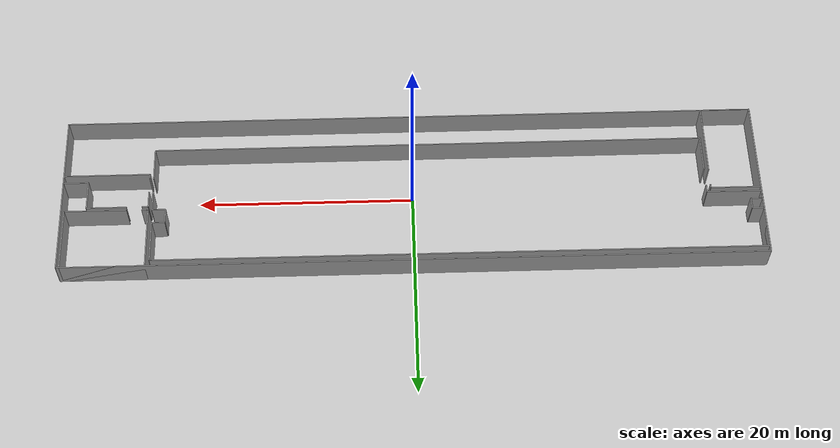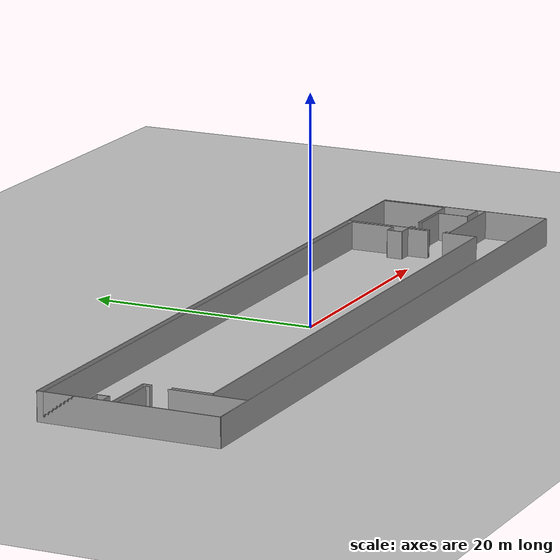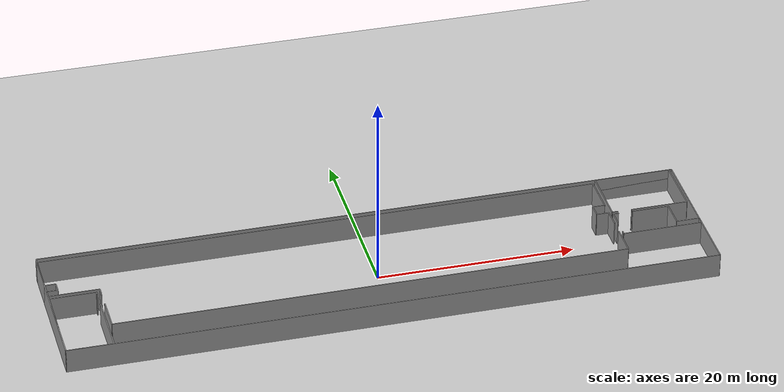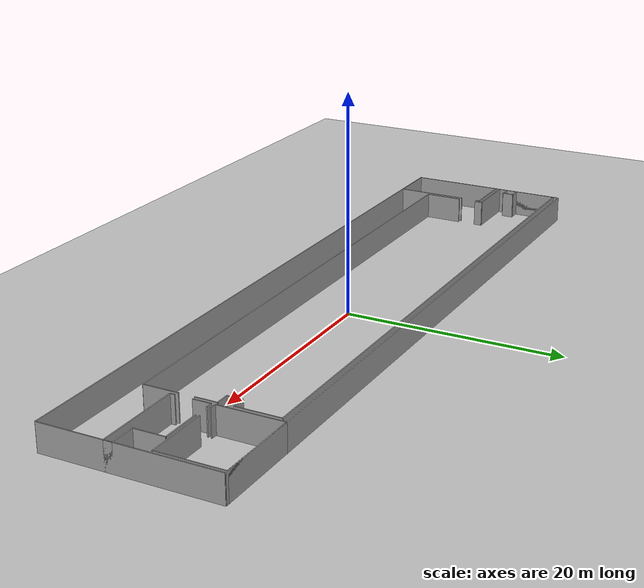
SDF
<sdf version="1.6">
  <world name="default">
    <light name="sun" type="directional">
      <cast_shadows>1</cast_shadows>
      <pose frame="">0 0 10 0 -0 0</pose>
      <diffuse>0.8 0.8 0.8 1</diffuse>
      <specular>0.1 0.1 0.1 1</specular>
      <attenuation>
        <range>1000</range>
        <constant>0.9</constant>
        <linear>0.01</linear>
        <quadratic>0.001</quadratic>
      </attenuation>
      <direction>-0.5 0.5 -1</direction>
    </light>
    <model name="ground_plane">
      <static>1</static>
      <link name="link">
        <collision name="collision">
          <geometry>
            <plane>
              <normal>0 0 1</normal>
              <size>100 100</size>
            </plane>
          </geometry>
          <surface>
            <friction>
              <ode>
                <mu>100</mu>
                <mu2>50</mu2>
              </ode>
              <torsional>
                <ode />
              </torsional>
            </friction>
            <contact>
              <ode />
            </contact>
            <bounce />
          </surface>
          <max_contacts>10</max_contacts>
        </collision>
        <visual name="visual">
          <cast_shadows>0</cast_shadows>
          <geometry>
            <plane>
              <normal>0 0 1</normal>
              <size>100 100</size>
            </plane>
          </geometry>
          <material>
            <script>
              <uri>file://media/materials/scripts/gazebo.material</uri>
              <name>Gazebo/Grey</name>
            </script>
          </material>
        </visual>
        <self_collide>0</self_collide>
        <kinematic>0</kinematic>
        <gravity>1</gravity>
      </link>
    </model>
    <gravity>0 0 -9.8</gravity>
    <magnetic_field>6e-06 2.3e-05 -4.2e-05</magnetic_field>
    <atmosphere type="adiabatic" />
    <physics default="0" name="default_physics" type="ode">
      <max_step_size>0.001</max_step_size>
      <real_time_factor>1</real_time_factor>
      <real_time_update_rate>1000</real_time_update_rate>
    </physics>
    <scene>
      <ambient>0.4 0.4 0.4 1</ambient>
      <background>0.7 0.7 0.7 1</background>
      <shadows>1</shadows>
    </scene>
    <spherical_coordinates>
      <surface_model>EARTH_WGS84</surface_model>
      <latitude_deg>0</latitude_deg>
      <longitude_deg>0</longitude_deg>
      <elevation>0</elevation>
      <heading_deg>0</heading_deg>
    </spherical_coordinates>
  <model name="0510030969_A-40">
		<static>1</static>
		<link name="Wall_0">
			<collision name="Wall_0_Collision">
				<geometry>
					<box>
						<size>8.78923368095 0.1 2.5</size>
					</box>
				</geometry>
				<pose frame="">4.39461684047 0 1.25 0 0 0</pose>
			</collision>
			<visual name="Wall_0_Visual">
				<pose frame="">4.39461684047 0 1.25 0 0 0</pose>
				<geometry>
					<box>
						<size>8.78923368095 0.1 2.5</size>
					</box>
				</geometry>
				<material>
					<script>
						<uri>file://media/materials/scripts/gazebo.material</uri>
						<name>Gazebo/Grey</name>
					</script>
					<ambient>1 1 1 1</ambient>
				</material>
			</visual>
			<pose frame="">0.0101616980197 -15.7569829919 0 0 0 1.57079632679</pose>
		</link>
		<link name="Wall_1">
			<collision name="Wall_1_Collision">
				<geometry>
					<box>
						<size>4.66587066699 0.1 2.5</size>
					</box>
				</geometry>
				<pose frame="">2.33293533349 0 1.25 0 0 0</pose>
			</collision>
			<visual name="Wall_1_Visual">
				<pose frame="">2.33293533349 0 1.25 0 0 0</pose>
				<geometry>
					<box>
						<size>4.66587066699 0.1 2.5</size>
					</box>
				</geometry>
				<material>
					<script>
						<uri>file://media/materials/scripts/gazebo.material</uri>
						<name>Gazebo/Grey</name>
					</script>
					<ambient>1 1 1 1</ambient>
				</material>
			</visual>
			<pose frame="">0.0101616980197 -6.96774931091 0 0 0 0.0</pose>
		</link>
		<link name="Wall_2">
			<collision name="Wall_2_Collision">
				<geometry>
					<box>
						<size>0.374331550802 0.1 2.5</size>
					</box>
				</geometry>
				<pose frame="">0.187165775401 0 1.25 0 0 0</pose>
			</collision>
			<visual name="Wall_2_Visual">
				<pose frame="">0.187165775401 0 1.25 0 0 0</pose>
				<geometry>
					<box>
						<size>0.374331550802 0.1 2.5</size>
					</box>
				</geometry>
				<material>
					<script>
						<uri>file://media/materials/scripts/gazebo.material</uri>
						<name>Gazebo/Grey</name>
					</script>
					<ambient>1 1 1 1</ambient>
				</material>
			</visual>
			<pose frame="">4.67603236501 -6.96774931091 0 0 0 -1.57079632679</pose>
		</link>
		<link name="Wall_3">
			<collision name="Wall_3_Collision">
				<geometry>
					<box>
						<size>6.83031234519 0.1 2.5</size>
					</box>
				</geometry>
				<pose frame="">3.4151561726 0 1.25 0 0 0</pose>
			</collision>
			<visual name="Wall_3_Visual">
				<pose frame="">3.4151561726 0 1.25 0 0 0</pose>
				<geometry>
					<box>
						<size>6.83031234519 0.1 2.5</size>
					</box>
				</geometry>
				<material>
					<script>
						<uri>file://media/materials/scripts/gazebo.material</uri>
						<name>Gazebo/Grey</name>
					</script>
					<ambient>1 1 1 1</ambient>
				</material>
			</visual>
			<pose frame="">4.67603236501 -8.92540043441 0 0 0 -1.57079632679</pose>
		</link>
		<link name="Wall_4">
			<collision name="Wall_4_Collision">
				<geometry>
					<box>
						<size>4.66587083989 0.1 2.5</size>
					</box>
				</geometry>
				<pose frame="">2.33293541994 0 1.25 0 0 0</pose>
			</collision>
			<visual name="Wall_4_Visual">
				<pose frame="">2.33293541994 0 1.25 0 0 0</pose>
				<geometry>
					<box>
						<size>4.66587083989 0.1 2.5</size>
					</box>
				</geometry>
				<material>
					<script>
						<uri>file://media/materials/scripts/gazebo.material</uri>
						<name>Gazebo/Grey</name>
					</script>
					<ambient>1 1 1 1</ambient>
				</material>
			</visual>
			<pose frame="">4.67603236501 -15.7557127796 0 0 0 -3.14132041882</pose>
		</link>
		<link name="Wall_5">
			<collision name="Wall_5_Collision">
				<geometry>
					<box>
						<size>3.53119006186 0.1 2.5</size>
					</box>
				</geometry>
				<pose frame="">1.76559503093 0 1.25 0 0 0</pose>
			</collision>
			<visual name="Wall_5_Visual">
				<pose frame="">1.76559503093 0 1.25 0 0 0</pose>
				<geometry>
					<box>
						<size>3.53119006186 0.1 2.5</size>
					</box>
				</geometry>
				<material>
					<script>
						<uri>file://media/materials/scripts/gazebo.material</uri>
						<name>Gazebo/Grey</name>
					</script>
					<ambient>1 1 1 1</ambient>
				</material>
			</visual>
			<pose frame="">5.09075666544 -12.5725608749 0 0 0 1.57079632679</pose>
		</link>
		<link name="Wall_6">
			<collision name="Wall_6_Collision">
				<geometry>
					<box>
						<size>0.76212735148 0.1 2.5</size>
					</box>
				</geometry>
				<pose frame="">0.38106367574 0 1.25 0 0 0</pose>
			</collision>
			<visual name="Wall_6_Visual">
				<pose frame="">0.38106367574 0 1.25 0 0 0</pose>
				<geometry>
					<box>
						<size>0.76212735148 0.1 2.5</size>
					</box>
				</geometry>
				<material>
					<script>
						<uri>file://media/materials/scripts/gazebo.material</uri>
						<name>Gazebo/Grey</name>
					</script>
					<ambient>1 1 1 1</ambient>
				</material>
			</visual>
			<pose frame="">5.09075666544 -7.29063726549 0 0 0 1.57079632679</pose>
		</link>
		<link name="Wall_7">
			<collision name="Wall_7_Collision">
				<geometry>
					<box>
						<size>5.07970581884 0.1 2.5</size>
					</box>
				</geometry>
				<pose frame="">2.53985290942 0 1.25 0 0 0</pose>
			</collision>
			<visual name="Wall_7_Visual">
				<pose frame="">2.53985290942 0 1.25 0 0 0</pose>
				<geometry>
					<box>
						<size>5.07970581884 0.1 2.5</size>
					</box>
				</geometry>
				<material>
					<script>
						<uri>file://media/materials/scripts/gazebo.material</uri>
						<name>Gazebo/Grey</name>
					</script>
					<ambient>1 1 1 1</ambient>
				</material>
			</visual>
			<pose frame="">5.09075666544 -6.52850991401 0 0 0 3.14159265359</pose>
		</link>
		<link name="Wall_8">
			<collision name="Wall_8_Collision">
				<geometry>
					<box>
						<size>0.828305409834 0.1 2.5</size>
					</box>
				</geometry>
				<pose frame="">0.414152704917 0 1.25 0 0 0</pose>
			</collision>
			<visual name="Wall_8_Visual">
				<pose frame="">0.414152704917 0 1.25 0 0 0</pose>
				<geometry>
					<box>
						<size>0.828305409834 0.1 2.5</size>
					</box>
				</geometry>
				<material>
					<script>
						<uri>file://media/materials/scripts/gazebo.material</uri>
						<name>Gazebo/Grey</name>
					</script>
					<ambient>1 1 1 1</ambient>
				</material>
			</visual>
			<pose frame="">0.0110508465965 -6.52850991401 0 0 0 1.57079632679</pose>
		</link>
		<link name="Wall_9">
			<collision name="Wall_9_Collision">
				<geometry>
					<box>
						<size>1.10444955352 0.1 2.5</size>
					</box>
				</geometry>
				<pose frame="">0.55222477676 0 1.25 0 0 0</pose>
			</collision>
			<visual name="Wall_9_Visual">
				<pose frame="">0.55222477676 0 1.25 0 0 0</pose>
				<geometry>
					<box>
						<size>1.10444955352 0.1 2.5</size>
					</box>
				</geometry>
				<material>
					<script>
						<uri>file://media/materials/scripts/gazebo.material</uri>
						<name>Gazebo/Grey</name>
					</script>
					<ambient>1 1 1 1</ambient>
				</material>
			</visual>
			<pose frame="">0.0110508465965 -5.70020450417 0 0 0 0.0</pose>
		</link>
		<link name="Wall_10">
			<collision name="Wall_10_Collision">
				<geometry>
					<box>
						<size>1.07142403496 0.1 2.5</size>
					</box>
				</geometry>
				<pose frame="">0.535712017478 0 1.25 0 0 0</pose>
			</collision>
			<visual name="Wall_10_Visual">
				<pose frame="">0.535712017478 0 1.25 0 0 0</pose>
				<geometry>
					<box>
						<size>1.07142403496 0.1 2.5</size>
					</box>
				</geometry>
				<material>
					<script>
						<uri>file://media/materials/scripts/gazebo.material</uri>
						<name>Gazebo/Grey</name>
					</script>
					<ambient>1 1 1 1</ambient>
				</material>
			</visual>
			<pose frame="">1.11550040012 -5.70020450417 0 0 0 1.57079632679</pose>
		</link>
		<link name="Wall_11">
			<collision name="Wall_11_Collision">
				<geometry>
					<box>
						<size>1.11550040012 0.1 2.5</size>
					</box>
				</geometry>
				<pose frame="">0.557750200058 0 1.25 0 0 0</pose>
			</collision>
			<visual name="Wall_11_Visual">
				<pose frame="">0.557750200058 0 1.25 0 0 0</pose>
				<geometry>
					<box>
						<size>1.11550040012 0.1 2.5</size>
					</box>
				</geometry>
				<material>
					<script>
						<uri>file://media/materials/scripts/gazebo.material</uri>
						<name>Gazebo/Grey</name>
					</script>
					<ambient>1 1 1 1</ambient>
				</material>
			</visual>
			<pose frame="">1.11550040012 -4.62878046922 0 0 0 3.14159265359</pose>
		</link>
		<link name="Wall_12">
			<collision name="Wall_12_Collision">
				<geometry>
					<box>
						<size>4.07573005449 0.1 2.5</size>
					</box>
				</geometry>
				<pose frame="">2.03786502725 0 1.25 0 0 0</pose>
			</collision>
			<visual name="Wall_12_Visual">
				<pose frame="">2.03786502725 0 1.25 0 0 0</pose>
				<geometry>
					<box>
						<size>4.07573005449 0.1 2.5</size>
					</box>
				</geometry>
				<material>
					<script>
						<uri>file://media/materials/scripts/gazebo.material</uri>
						<name>Gazebo/Grey</name>
					</script>
					<ambient>1 1 1 1</ambient>
				</material>
			</visual>
			<pose frame="">0.0 -4.62878046922 0 0 0 1.57079632679</pose>
		</link>
		<link name="Wall_13">
			<collision name="Wall_13_Collision">
				<geometry>
					<box>
						<size>56.7176445184 0.1 2.5</size>
					</box>
				</geometry>
				<pose frame="">28.3588222592 0 1.25 0 0 0</pose>
			</collision>
			<visual name="Wall_13_Visual">
				<pose frame="">28.3588222592 0 1.25 0 0 0</pose>
				<geometry>
					<box>
						<size>56.7176445184 0.1 2.5</size>
					</box>
				</geometry>
				<material>
					<script>
						<uri>file://media/materials/scripts/gazebo.material</uri>
						<name>Gazebo/Grey</name>
					</script>
					<ambient>1 1 1 1</ambient>
				</material>
			</visual>
			<pose frame="">0.0 -0.553050414724 0 0 0 0.0</pose>
		</link>
		<link name="Wall_14">
			<collision name="Wall_14_Collision">
				<geometry>
					<box>
						<size>4.02047582151 0.1 2.5</size>
					</box>
				</geometry>
				<pose frame="">2.01023791075 0 1.25 0 0 0</pose>
			</collision>
			<visual name="Wall_14_Visual">
				<pose frame="">2.01023791075 0 1.25 0 0 0</pose>
				<geometry>
					<box>
						<size>4.02047582151 0.1 2.5</size>
					</box>
				</geometry>
				<material>
					<script>
						<uri>file://media/materials/scripts/gazebo.material</uri>
						<name>Gazebo/Grey</name>
					</script>
					<ambient>1 1 1 1</ambient>
				</material>
			</visual>
			<pose frame="">56.7176445184 -0.553050414724 0 0 0 -1.57079632679</pose>
		</link>
		<link name="Wall_15">
			<collision name="Wall_15_Collision">
				<geometry>
					<box>
						<size>1.22600886608 0.1 2.5</size>
					</box>
				</geometry>
				<pose frame="">0.613004433041 0 1.25 0 0 0</pose>
			</collision>
			<visual name="Wall_15_Visual">
				<pose frame="">0.613004433041 0 1.25 0 0 0</pose>
				<geometry>
					<box>
						<size>1.22600886608 0.1 2.5</size>
					</box>
				</geometry>
				<material>
					<script>
						<uri>file://media/materials/scripts/gazebo.material</uri>
						<name>Gazebo/Grey</name>
					</script>
					<ambient>1 1 1 1</ambient>
				</material>
			</visual>
			<pose frame="">56.7176445184 -4.57352623623 0 0 0 3.14159265359</pose>
		</link>
		<link name="Wall_16">
			<collision name="Wall_16_Collision">
				<geometry>
					<box>
						<size>1.39177156503 0.1 2.5</size>
					</box>
				</geometry>
				<pose frame="">0.695885782514 0 1.25 0 0 0</pose>
			</collision>
			<visual name="Wall_16_Visual">
				<pose frame="">0.695885782514 0 1.25 0 0 0</pose>
				<geometry>
					<box>
						<size>1.39177156503 0.1 2.5</size>
					</box>
				</geometry>
				<material>
					<script>
						<uri>file://media/materials/scripts/gazebo.material</uri>
						<name>Gazebo/Grey</name>
					</script>
					<ambient>1 1 1 1</ambient>
				</material>
			</visual>
			<pose frame="">55.4916356523 -4.57352623623 0 0 0 -1.57079632679</pose>
		</link>
		<link name="Wall_17">
			<collision name="Wall_17_Collision">
				<geometry>
					<box>
						<size>1.25712906627 0.1 2.5</size>
					</box>
				</geometry>
				<pose frame="">0.628564533133 0 1.25 0 0 0</pose>
			</collision>
			<visual name="Wall_17_Visual">
				<pose frame="">0.628564533133 0 1.25 0 0 0</pose>
				<geometry>
					<box>
						<size>1.25712906627 0.1 2.5</size>
					</box>
				</geometry>
				<material>
					<script>
						<uri>file://media/materials/scripts/gazebo.material</uri>
						<name>Gazebo/Grey</name>
					</script>
					<ambient>1 1 1 1</ambient>
				</material>
			</visual>
			<pose frame="">55.4916356523 -5.96529780126 0 0 0 0.0</pose>
		</link>
		<link name="Wall_18">
			<collision name="Wall_18_Collision">
				<geometry>
					<box>
						<size>1.97505303136 0.1 2.5</size>
					</box>
				</geometry>
				<pose frame="">0.987526515681 0 1.25 0 0 0</pose>
			</collision>
			<visual name="Wall_18_Visual">
				<pose frame="">0.987526515681 0 1.25 0 0 0</pose>
				<geometry>
					<box>
						<size>1.97505303136 0.1 2.5</size>
					</box>
				</geometry>
				<material>
					<script>
						<uri>file://media/materials/scripts/gazebo.material</uri>
						<name>Gazebo/Grey</name>
					</script>
					<ambient>1 1 1 1</ambient>
				</material>
			</visual>
			<pose frame="">56.7487647186 -5.96529780126 0 0 0 -1.57079632679</pose>
		</link>
		<link name="Wall_19">
			<collision name="Wall_19_Collision">
				<geometry>
					<box>
						<size>3.19217041168 0.1 2.5</size>
					</box>
				</geometry>
				<pose frame="">1.59608520584 0 1.25 0 0 0</pose>
			</collision>
			<visual name="Wall_19_Visual">
				<pose frame="">1.59608520584 0 1.25 0 0 0</pose>
				<geometry>
					<box>
						<size>3.19217041168 0.1 2.5</size>
					</box>
				</geometry>
				<material>
					<script>
						<uri>file://media/materials/scripts/gazebo.material</uri>
						<name>Gazebo/Grey</name>
					</script>
					<ambient>1 1 1 1</ambient>
				</material>
			</visual>
			<pose frame="">56.7487647186 -9.33402771603 0 0 0 -1.57079632679</pose>
		</link>
		<link name="Wall_20">
			<collision name="Wall_20_Collision">
				<geometry>
					<box>
						<size>51.6580288583 0.1 2.5</size>
					</box>
				</geometry>
				<pose frame="">25.8290144291 0 1.25 0 0 0</pose>
			</collision>
			<visual name="Wall_20_Visual">
				<pose frame="">25.8290144291 0 1.25 0 0 0</pose>
				<geometry>
					<box>
						<size>51.6580288583 0.1 2.5</size>
					</box>
				</geometry>
				<material>
					<script>
						<uri>file://media/materials/scripts/gazebo.material</uri>
						<name>Gazebo/Grey</name>
					</script>
					<ambient>1 1 1 1</ambient>
				</material>
			</visual>
			<pose frame="">56.7487647186 -12.5261981277 0 0 0 -3.14069515993</pose>
		</link>
		<link name="Wall_21">
			<collision name="Wall_21_Collision">
				<geometry>
					<box>
						<size>5.92681037001 0.1 2.5</size>
					</box>
				</geometry>
				<pose frame="">2.96340518501 0 1.25 0 0 0</pose>
			</collision>
			<visual name="Wall_21_Visual">
				<pose frame="">2.96340518501 0 1.25 0 0 0</pose>
				<geometry>
					<box>
						<size>5.92681037001 0.1 2.5</size>
					</box>
				</geometry>
				<material>
					<script>
						<uri>file://media/materials/scripts/gazebo.material</uri>
						<name>Gazebo/Grey</name>
					</script>
					<ambient>1 1 1 1</ambient>
				</material>
			</visual>
			<pose frame="">57.1035350007 -5.92681037001 0 0 0 1.57079632679</pose>
		</link>
		<link name="Wall_22">
			<collision name="Wall_22_Collision">
				<geometry>
					<box>
						<size>7.77357196388 0.1 2.5</size>
					</box>
				</geometry>
				<pose frame="">3.88678598194 0 1.25 0 0 0</pose>
			</collision>
			<visual name="Wall_22_Visual">
				<pose frame="">3.88678598194 0 1.25 0 0 0</pose>
				<geometry>
					<box>
						<size>7.77357196388 0.1 2.5</size>
					</box>
				</geometry>
				<material>
					<script>
						<uri>file://media/materials/scripts/gazebo.material</uri>
						<name>Gazebo/Grey</name>
					</script>
					<ambient>1 1 1 1</ambient>
				</material>
			</visual>
			<pose frame="">57.1035350007 -0.0 0 0 0 0.0</pose>
		</link>
		<link name="Wall_23">
			<collision name="Wall_23_Collision">
				<geometry>
					<box>
						<size>5.98015928462 0.1 2.5</size>
					</box>
				</geometry>
				<pose frame="">2.99007964231 0 1.25 0 0 0</pose>
			</collision>
			<visual name="Wall_23_Visual">
				<pose frame="">2.99007964231 0 1.25 0 0 0</pose>
				<geometry>
					<box>
						<size>5.98015928462 0.1 2.5</size>
					</box>
				</geometry>
				<material>
					<script>
						<uri>file://media/materials/scripts/gazebo.material</uri>
						<name>Gazebo/Grey</name>
					</script>
					<ambient>1 1 1 1</ambient>
				</material>
			</visual>
			<pose frame="">64.8771069646 -0.0 0 0 0 -1.57079632679</pose>
		</link>
		<link name="Wall_24">
			<collision name="Wall_24_Collision">
				<geometry>
					<box>
						<size>5.78962744675 0.1 2.5</size>
					</box>
				</geometry>
				<pose frame="">2.89481372337 0 1.25 0 0 0</pose>
			</collision>
			<visual name="Wall_24_Visual">
				<pose frame="">2.89481372337 0 1.25 0 0 0</pose>
				<geometry>
					<box>
						<size>5.78962744675 0.1 2.5</size>
					</box>
				</geometry>
				<material>
					<script>
						<uri>file://media/materials/scripts/gazebo.material</uri>
						<name>Gazebo/Grey</name>
					</script>
					<ambient>1 1 1 1</ambient>
				</material>
			</visual>
			<pose frame="">64.8771069646 -5.98015928462 0 0 0 3.14159265359</pose>
		</link>
		<link name="Wall_25">
			<collision name="Wall_25_Collision">
				<geometry>
					<box>
						<size>0.591661553949 0.1 2.5</size>
					</box>
				</geometry>
				<pose frame="">0.295830776974 0 1.25 0 0 0</pose>
			</collision>
			<visual name="Wall_25_Visual">
				<pose frame="">0.295830776974 0 1.25 0 0 0</pose>
				<geometry>
					<box>
						<size>0.591661553949 0.1 2.5</size>
					</box>
				</geometry>
				<material>
					<script>
						<uri>file://media/materials/scripts/gazebo.material</uri>
						<name>Gazebo/Grey</name>
					</script>
					<ambient>1 1 1 1</ambient>
				</material>
			</visual>
			<pose frame="">57.6927864646 -5.98015928462 0 0 0 3.05130206412</pose>
		</link>
		<link name="Wall_26">
			<collision name="Wall_26_Collision">
				<geometry>
					<box>
						<size>0.430728974812 0.1 2.5</size>
					</box>
				</geometry>
				<pose frame="">0.215364487406 0 1.25 0 0 0</pose>
			</collision>
			<visual name="Wall_26_Visual">
				<pose frame="">0.215364487406 0 1.25 0 0 0</pose>
				<geometry>
					<box>
						<size>0.430728974812 0.1 2.5</size>
					</box>
				</geometry>
				<material>
					<script>
						<uri>file://media/materials/scripts/gazebo.material</uri>
						<name>Gazebo/Grey</name>
					</script>
					<ambient>1 1 1 1</ambient>
				</material>
			</visual>
			<pose frame="">57.1042971281 -9.86421431021 0 0 0 1.57079632679</pose>
		</link>
		<link name="Wall_27">
			<collision name="Wall_27_Collision">
				<geometry>
					<box>
						<size>1.60364296874 0.1 2.5</size>
					</box>
				</geometry>
				<pose frame="">0.80182148437 0 1.25 0 0 0</pose>
			</collision>
			<visual name="Wall_27_Visual">
				<pose frame="">0.80182148437 0 1.25 0 0 0</pose>
				<geometry>
					<box>
						<size>1.60364296874 0.1 2.5</size>
					</box>
				</geometry>
				<material>
					<script>
						<uri>file://media/materials/scripts/gazebo.material</uri>
						<name>Gazebo/Grey</name>
					</script>
					<ambient>1 1 1 1</ambient>
				</material>
			</visual>
			<pose frame="">57.1042971281 -7.89792574339 0 0 0 1.57079632679</pose>
		</link>
		<link name="Wall_28">
			<collision name="Wall_28_Collision">
				<geometry>
					<box>
						<size>0.575406150368 0.1 2.5</size>
					</box>
				</geometry>
				<pose frame="">0.287703075184 0 1.25 0 0 0</pose>
			</collision>
			<visual name="Wall_28_Visual">
				<pose frame="">0.287703075184 0 1.25 0 0 0</pose>
				<geometry>
					<box>
						<size>0.575406150368 0.1 2.5</size>
					</box>
				</geometry>
				<material>
					<script>
						<uri>file://media/materials/scripts/gazebo.material</uri>
						<name>Gazebo/Grey</name>
					</script>
					<ambient>1 1 1 1</ambient>
				</material>
			</visual>
			<pose frame="">57.1042971281 -6.29428277465 0 0 0 0.0</pose>
		</link>
		<link name="Wall_29">
			<collision name="Wall_29_Collision">
				<geometry>
					<box>
						<size>3.72489743036 0.1 2.5</size>
					</box>
				</geometry>
				<pose frame="">1.86244871518 0 1.25 0 0 0</pose>
			</collision>
			<visual name="Wall_29_Visual">
				<pose frame="">1.86244871518 0 1.25 0 0 0</pose>
				<geometry>
					<box>
						<size>3.72489743036 0.1 2.5</size>
					</box>
				</geometry>
				<material>
					<script>
						<uri>file://media/materials/scripts/gazebo.material</uri>
						<name>Gazebo/Grey</name>
					</script>
					<ambient>1 1 1 1</ambient>
				</material>
			</visual>
			<pose frame="">59.1071678077 -6.29428277465 0 0 0 0.0</pose>
		</link>
		<link name="Wall_30">
			<collision name="Wall_30_Collision">
				<geometry>
					<box>
						<size>2.79154546725 0.1 2.5</size>
					</box>
				</geometry>
				<pose frame="">1.39577273362 0 1.25 0 0 0</pose>
			</collision>
			<visual name="Wall_30_Visual">
				<pose frame="">1.39577273362 0 1.25 0 0 0</pose>
				<geometry>
					<box>
						<size>2.79154546725 0.1 2.5</size>
					</box>
				</geometry>
				<material>
					<script>
						<uri>file://media/materials/scripts/gazebo.material</uri>
						<name>Gazebo/Grey</name>
					</script>
					<ambient>1 1 1 1</ambient>
				</material>
			</visual>
			<pose frame="">62.8320652381 -6.29428277465 0 0 0 -1.57079632679</pose>
		</link>
		<link name="Wall_31">
			<collision name="Wall_31_Collision">
				<geometry>
					<box>
						<size>2.33719054454 0.1 2.5</size>
					</box>
				</geometry>
				<pose frame="">1.16859527227 0 1.25 0 0 0</pose>
			</collision>
			<visual name="Wall_31_Visual">
				<pose frame="">1.16859527227 0 1.25 0 0 0</pose>
				<geometry>
					<box>
						<size>2.33719054454 0.1 2.5</size>
					</box>
				</geometry>
				<material>
					<script>
						<uri>file://media/materials/scripts/gazebo.material</uri>
						<name>Gazebo/Grey</name>
					</script>
					<ambient>1 1 1 1</ambient>
				</material>
			</visual>
			<pose frame="">62.8320652381 -9.0858282419 0 0 0 0.0</pose>
		</link>
		<link name="Wall_32">
			<collision name="Wall_32_Collision">
				<geometry>
					<box>
						<size>0.774194367879 0.1 2.5</size>
					</box>
				</geometry>
				<pose frame="">0.387097183939 0 1.25 0 0 0</pose>
			</collision>
			<visual name="Wall_32_Visual">
				<pose frame="">0.387097183939 0 1.25 0 0 0</pose>
				<geometry>
					<box>
						<size>0.774194367879 0.1 2.5</size>
					</box>
				</geometry>
				<material>
					<script>
						<uri>file://media/materials/scripts/gazebo.material</uri>
						<name>Gazebo/Grey</name>
					</script>
					<ambient>1 1 1 1</ambient>
				</material>
			</visual>
			<pose frame="">65.1692557826 -9.0858282419 0 0 0 -1.57079632679</pose>
		</link>
		<link name="Wall_33">
			<collision name="Wall_33_Collision">
				<geometry>
					<box>
						<size>8.06495974389 0.1 2.5</size>
					</box>
				</geometry>
				<pose frame="">4.03247987195 0 1.25 0 0 0</pose>
			</collision>
			<visual name="Wall_33_Visual">
				<pose frame="">4.03247987195 0 1.25 0 0 0</pose>
				<geometry>
					<box>
						<size>8.06495974389 0.1 2.5</size>
					</box>
				</geometry>
				<material>
					<script>
						<uri>file://media/materials/scripts/gazebo.material</uri>
						<name>Gazebo/Grey</name>
					</script>
					<ambient>1 1 1 1</ambient>
				</material>
			</visual>
			<pose frame="">65.1692557826 -9.86002260978 0 0 0 -3.1410729113</pose>
		</link>
		<link name="Wall_34">
			<collision name="Wall_34_Collision">
				<geometry>
					<box>
						<size>15.7569829919 0.1 2.5</size>
					</box>
				</geometry>
				<pose frame="">7.87849149593 0 1.25 0 0 0</pose>
			</collision>
			<visual name="Wall_34_Visual">
				<pose frame="">7.87849149593 0 1.25 0 0 0</pose>
				<geometry>
					<box>
						<size>15.7569829919 0.1 2.5</size>
					</box>
				</geometry>
				<material>
					<script>
						<uri>file://media/materials/scripts/gazebo.material</uri>
						<name>Gazebo/Grey</name>
					</script>
					<ambient>1 1 1 1</ambient>
				</material>
			</visual>
			<pose frame="">65.1692557826 -15.7569829919 0 0 0 1.57079632679</pose>
		</link>
		<link name="Wall_35">
			<collision name="Wall_35_Collision">
				<geometry>
					<box>
						<size>65.1692557826 0.1 2.5</size>
					</box>
				</geometry>
				<pose frame="">32.5846278913 0 1.25 0 0 0</pose>
			</collision>
			<visual name="Wall_35_Visual">
				<pose frame="">32.5846278913 0 1.25 0 0 0</pose>
				<geometry>
					<box>
						<size>65.1692557826 0.1 2.5</size>
					</box>
				</geometry>
				<material>
					<script>
						<uri>file://media/materials/scripts/gazebo.material</uri>
						<name>Gazebo/Grey</name>
					</script>
					<ambient>1 1 1 1</ambient>
				</material>
			</visual>
			<pose frame="">65.1692557826 -15.7569829919 0 0 0 3.14159265359</pose>
		</link>
		<link name="Wall_36">
			<collision name="Wall_36_Collision">
				<geometry>
					<box>
						<size>15.7569829919 0.1 2.5</size>
					</box>
				</geometry>
				<pose frame="">7.87849149593 0 1.25 0 0 0</pose>
			</collision>
			<visual name="Wall_36_Visual">
				<pose frame="">7.87849149593 0 1.25 0 0 0</pose>
				<geometry>
					<box>
						<size>15.7569829919 0.1 2.5</size>
					</box>
				</geometry>
				<material>
					<script>
						<uri>file://media/materials/scripts/gazebo.material</uri>
						<name>Gazebo/Grey</name>
					</script>
					<ambient>1 1 1 1</ambient>
				</material>
			</visual>
			<pose frame="">0.0 -15.7569829919 0 0 0 1.57079632679</pose>
		</link>
		<link name="Wall_37">
			<collision name="Wall_37_Collision">
				<geometry>
					<box>
						<size>65.1692557826 0.1 2.5</size>
					</box>
				</geometry>
				<pose frame="">32.5846278913 0 1.25 0 0 0</pose>
			</collision>
			<visual name="Wall_37_Visual">
				<pose frame="">32.5846278913 0 1.25 0 0 0</pose>
				<geometry>
					<box>
						<size>65.1692557826 0.1 2.5</size>
					</box>
				</geometry>
				<material>
					<script>
						<uri>file://media/materials/scripts/gazebo.material</uri>
						<name>Gazebo/Grey</name>
					</script>
					<ambient>1 1 1 1</ambient>
				</material>
			</visual>
			<pose frame="">0.0 -0.0 0 0 0 0.0</pose>
		</link>
		<pose frame="">-32.55 7.85698299186 0 0 0 0</pose>
	</model>
</world>
</sdf>
